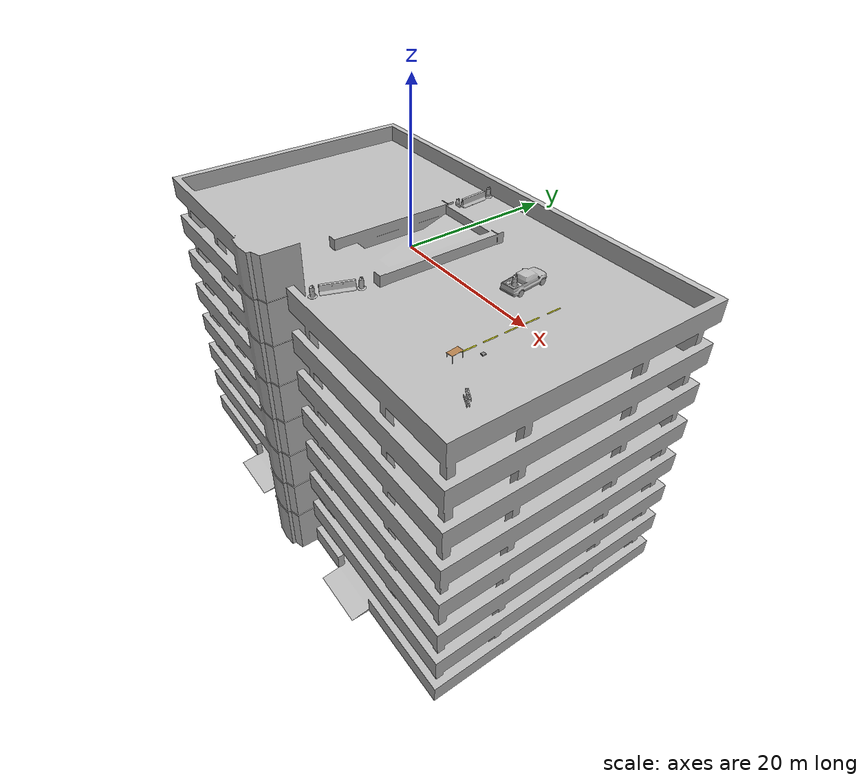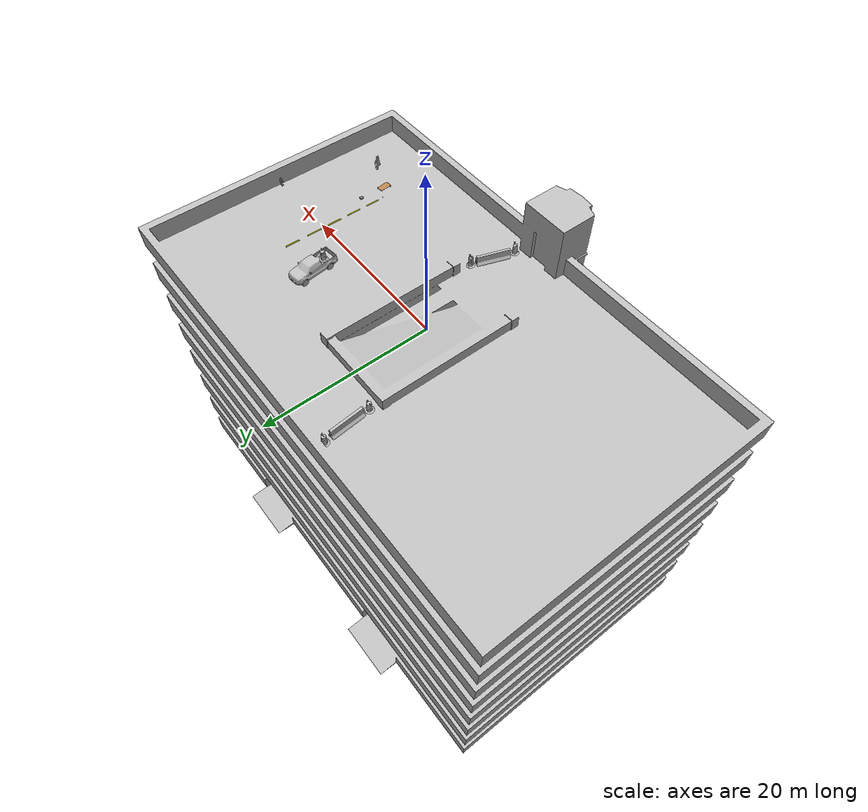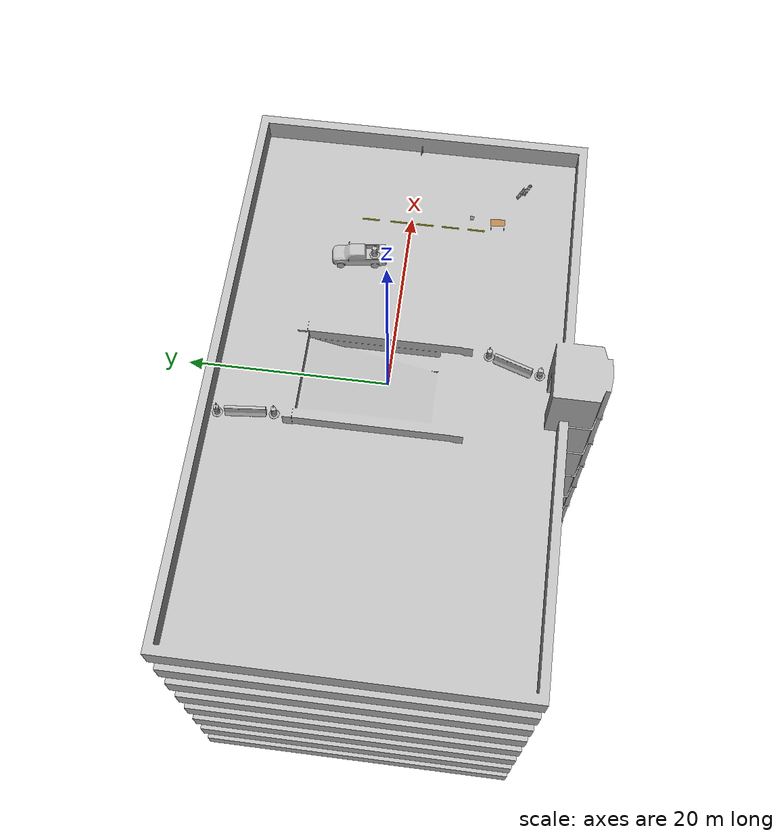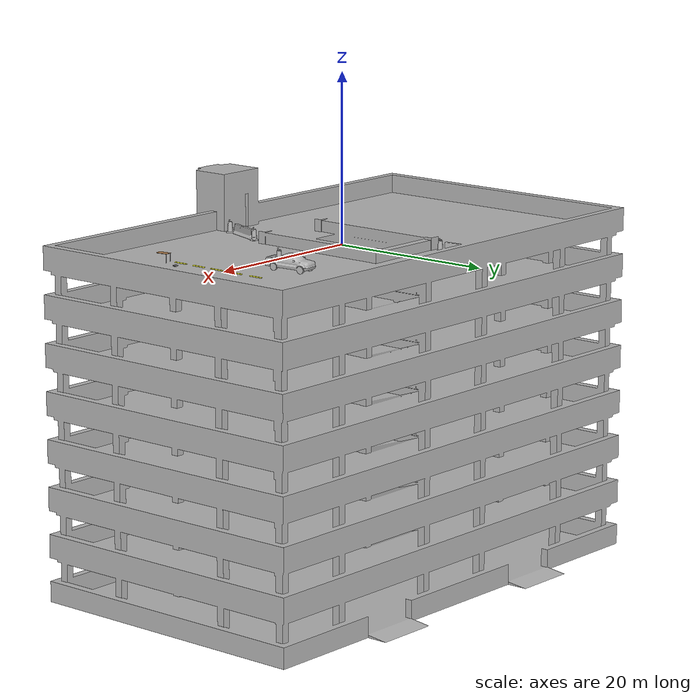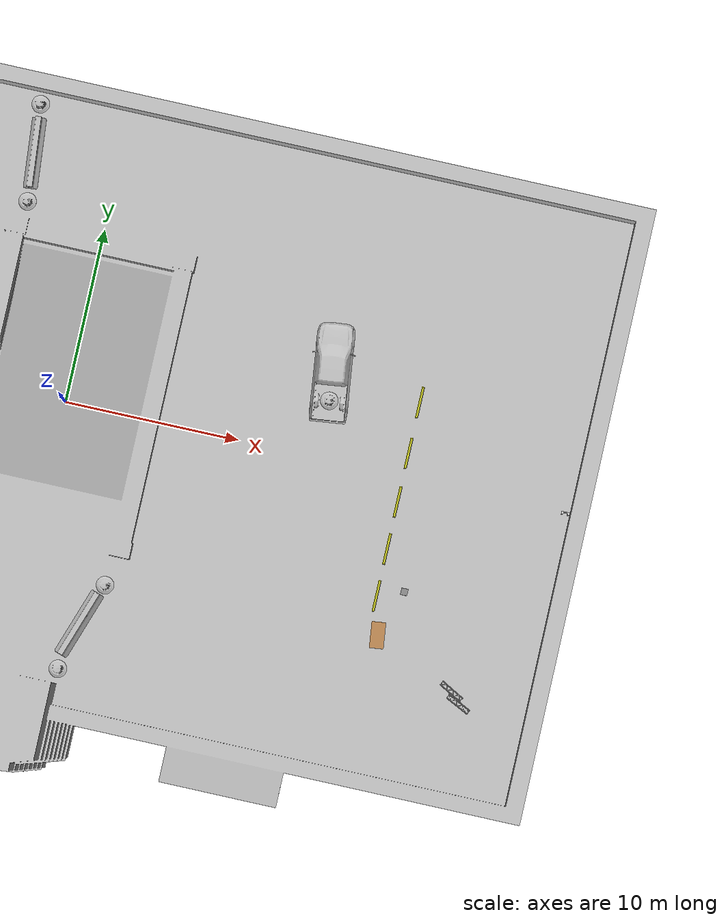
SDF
<sdf version="1.6">
 <world name="default">
  <light name="sun" type="directional">
   <pose>0 0 10 0 -0 0</pose>
   <diffuse>0.8 0.8 0.8 1</diffuse>
   <specular>0.2 0.2 0.2 1</specular>
   <attenuation>
    <range>1000</range>
    <constant>0.9</constant>
    <linear>0.01</linear>
    <quadratic>0.001</quadratic>
   </attenuation>
   <direction>-0.5 0.1 -0.9</direction>
   <spot><inner_angle>0</inner_angle><outer_angle>0</outer_angle><falloff>0</falloff></spot>
  </light>
  <gravity>0 0 -9.8</gravity>
  <magnetic_field>6e-06 2.3e-05 -4.2e-05</magnetic_field>
  <atmosphere type="adiabatic"/>
  <physics type="ode">
   <max_step_size>0.001</max_step_size>
   <real_time_factor>1</real_time_factor>
   <real_time_update_rate>1000</real_time_update_rate>
  </physics>
  <scene><ambient>0.4 0.4 0.4 1</ambient><background>0.7 0.7 0.7 1</background><shadows>1</shadows></scene>
  <audio><device>default</device></audio>
  <spherical_coordinates>
   <surface_model>EARTH_WGS84</surface_model>
   <latitude_deg>0</latitude_deg>
   <longitude_deg>0</longitude_deg>
   <elevation>0</elevation>
   <heading_deg>0</heading_deg>
  </spherical_coordinates>
  <model name="parking_garage">
   <static>1</static>
   <link name="link">
    <collision name="collision">
     <geometry><mesh><uri>model://parking_garage/meshes/parking_garage.dae</uri></mesh></geometry>
    </collision>
    <visual name="visual">
     <geometry><mesh><uri>model://parking_garage/meshes/parking_garage.dae</uri></mesh></geometry>
    </visual>
   </link>
   <pose>0 0 -39.144 0 -0 0</pose>
  </model>
  <model name="Construction Barrel">
   <link name="link">
    <inertial>
     <pose>0 0 0.4 0 -0 0</pose>
     <mass>500</mass>
     <inertia><ixx>51.2096</ixx><iyy>51.2096</iyy><izz>25</izz><ixy>0</ixy><ixz>0</ixz><iyz>0</iyz></inertia>
    </inertial>
    <collision name="collision">
     <geometry><mesh><uri>model://construction_barrel/meshes/construction_barrel.dae</uri></mesh></geometry>
    </collision>
    <visual name="visual">
     <geometry><mesh><uri>model://construction_barrel/meshes/construction_barrel.dae</uri></mesh></geometry>
    </visual>
   </link>
   <pose>4.43329 -9.63921 -1e-05 2e-06 -0 0.082378</pose>
  </model>
  <model name="jersey_barrier">
   <static>1</static>
   <link name="link">
    <visual name="visual">
     <geometry><mesh><uri>model://jersey_barrier/meshes/jersey_barrier.dae</uri></mesh></geometry>
    </visual>
    <collision name="upright">
     <pose>0 0 0.5715 0 -0 0</pose>
     <geometry><box><size>4.06542 0.3063 1.143</size></box></geometry>
    </collision>
    <collision name="base">
     <pose>0 0 0.032258 0 -0 0</pose>
     <geometry><box><size>4.06542 0.8107 0.064516</size></box></geometry>
    </collision>
    <collision name="base2">
     <pose>0 0 0.1 0 -0 0</pose>
     <geometry><box><size>4.06542 0.65 0.1</size></box></geometry>
    </collision>
    <collision name="base3">
     <pose>0 0 0.2 0 -0 0</pose>
     <geometry><box><size>4.06542 0.5 0.1</size></box></geometry>
    </collision>
    <collision name="left-angle">
     <pose>0 -0.224 0.2401 0.9 -0 0</pose>
     <geometry><box><size>4.06542 0.5 0.064516</size></box></geometry>
    </collision>
    <collision name="right-angle">
     <pose>0 0.224 0.2401 -0.9 0 0</pose>
     <geometry><box><size>4.06542 0.5 0.064516</size></box></geometry>
    </collision>
   </link>
   <pose>3.48852 -12.0957 0 0 0 -1.90259</pose>
  </model>
  <model name="jersey_barrier_clone">
   <static>1</static>
   <link name="link">
    <visual name="visual">
     <geometry><mesh><uri>model://jersey_barrier/meshes/jersey_barrier.dae</uri></mesh></geometry>
    </visual>
    <collision name="upright">
     <pose>0 0 0.5715 0 -0 0</pose>
     <geometry><box><size>4.06542 0.3063 1.143</size></box></geometry>
    </collision>
    <collision name="base">
     <pose>0 0 0.032258 0 -0 0</pose>
     <geometry><box><size>4.06542 0.8107 0.064516</size></box></geometry>
    </collision>
    <collision name="base2">
     <pose>0 0 0.1 0 -0 0</pose>
     <geometry><box><size>4.06542 0.65 0.1</size></box></geometry>
    </collision>
    <collision name="base3">
     <pose>0 0 0.2 0 -0 0</pose>
     <geometry><box><size>4.06542 0.5 0.1</size></box></geometry>
    </collision>
    <collision name="left-angle">
     <pose>0 -0.224 0.2401 0.9 -0 0</pose>
     <geometry><box><size>4.06542 0.5 0.064516</size></box></geometry>
    </collision>
    <collision name="right-angle">
     <pose>0 0.224 0.2401 -0.9 0 0</pose>
     <geometry><box><size>4.06542 0.5 0.064516</size></box></geometry>
    </collision>
   </link>
   <pose>-4.84049 13.4021 0 0 0 -1.48186</pose>
  </model>
  <model name="cinder_block_wide">
   <link name="link">
    <inertial>
     <pose>0 0 0.071438 0 -0 0</pose>
     <mass>5</mass>
     <inertia>
      <ixx>0.0681466</ixx>
      <ixy>0</ixy>
      <iyy>0.0681466</iyy>
      <ixz>0</ixz>
      <iyz>0</iyz>
      <izz>0.124808</izz>
     </inertia>
    </inertial>
    <visual name="visual">
     <geometry><mesh><uri>model://cinder_block_wide/meshes/cinder_block_wide.dae</uri></mesh></geometry>
    </visual>
    <collision name="top">
     <pose>0 0 0.130175 0 -0 0</pose>
     <geometry><box><size>0.387354 0.387354 0.0254</size></box></geometry>
     <surface>
      <contact><ode><max_vel>0.1</max_vel><min_depth>0.001</min_depth></ode></contact>
      <friction><ode><mu>1</mu><mu2>1</mu2></ode></friction>
     </surface>
    </collision>
    <collision name="bottom">
     <pose>0 0 0.0127 0 -0 0</pose>
     <geometry><box><size>0.387354 0.387354 0.0254</size></box></geometry>
     <surface>
      <contact><ode><max_vel>0.1</max_vel><min_depth>0.001</min_depth></ode></contact>
      <friction><ode><mu>1</mu><mu2>1</mu2></ode></friction>
     </surface>
    </collision>
    <collision name="left">
     <pose>0 -0.183355 0.071438 0 -0 0</pose>
     <geometry><box><size>0.387354 0.020643 0.092075</size></box></geometry>
     <surface>
      <contact><ode><max_vel>0.1</max_vel><min_depth>0.001</min_depth></ode></contact>
      <friction><ode><mu>1</mu><mu2>1</mu2></ode></friction>
     </surface>
    </collision>
    <collision name="right">
     <pose>0 0.183355 0.071438 0 -0 0</pose>
     <geometry><box><size>0.387354 0.020643 0.092075</size></box></geometry>
     <surface>
      <contact><ode><max_vel>0.1</max_vel><min_depth>0.001</min_depth></ode></contact>
      <friction><ode><mu>1</mu><mu2>1</mu2></ode></friction>
     </surface>
    </collision>
    <collision name="middle">
     <pose>0 0 0.071438 0 -0 0</pose>
     <geometry><box><size>0.387354 0.0254 0.092075</size></box></geometry>
     <surface>
      <contact><ode><max_vel>0.1</max_vel><min_depth>0.001</min_depth></ode></contact>
      <friction><ode><mu>1</mu><mu2>1</mu2></ode></friction>
     </surface>
    </collision>
   </link>
   <pose>21.058 -6.30922 -0.000736 2e-06 -0.000116 -0</pose>
  </model>
  <model name="truss">
   <link name="link">
    <inertial>
     <mass>20.7307</mass>
     <inertia>
      <ixx>4.7978</ixx>
      <ixy>0</ixy>
      <ixz>0</ixz>
      <iyy>0.4699</iyy>
      <iyz>-0.002</iyz>
      <izz>4.7978</izz>
     </inertia>
    </inertial>
    <collision name="collision">
     <geometry><mesh><uri>model://drc_practice_truss/meshes/truss.dae</uri></mesh></geometry>
     <surface>
      <bounce><restitution_coefficient>0</restitution_coefficient><threshold>100000</threshold></bounce>
      <friction><ode><mu>10</mu><mu2>10</mu2></ode></friction>
     </surface>
    </collision>
    <visual name="visual">
     <geometry><mesh><uri>model://drc_practice_truss/meshes/truss.dae</uri></mesh></geometry>
    </visual>
   </link>
   <pose>24.8939 -11.2313 0.143285 -1.4e-05 -0 1.06959</pose>
  </model>
  <model name="truss_clone">
   <link name="link">
    <inertial>
     <mass>20.7307</mass>
     <inertia>
      <ixx>4.7978</ixx>
      <ixy>0</ixy>
      <ixz>0</ixz>
      <iyy>0.4699</iyy>
      <iyz>-0.002</iyz>
      <izz>4.7978</izz>
     </inertia>
    </inertial>
    <collision name="collision">
     <geometry><mesh><uri>model://drc_practice_truss/meshes/truss.dae</uri></mesh></geometry>
     <surface>
      <bounce><restitution_coefficient>0</restitution_coefficient><threshold>100000</threshold></bounce>
      <friction><ode><mu>10</mu><mu2>10</mu2></ode></friction>
     </surface>
    </collision>
    <visual name="visual">
     <geometry><mesh><uri>model://drc_practice_truss/meshes/truss.dae</uri></mesh></geometry>
    </visual>
   </link>
   <pose>25.4227 -11.8464 0.14726 3.14159 0 -2.02388</pose>
  </model>
  <model name="table">
   <static>1</static>
   <link name="link">
    <collision name="surface">
     <pose>0 0 1 0 -0 0</pose>
     <geometry><box><size>1.5 0.8 0.03</size></box></geometry>
     <surface><friction><ode><mu>0.6</mu><mu2>0.6</mu2></ode></friction></surface>
    </collision>
    <visual name="visual1">
     <pose>0 0 1 0 -0 0</pose>
     <geometry><box><size>1.5 0.8 0.03</size></box></geometry>
     <material>
      <script><uri>file://media/materials/scripts/gazebo.material</uri><name>Gazebo/Wood</name></script>
     </material>
    </visual>
    <collision name="front_left_leg">
     <pose>0.68 0.38 0.5 0 -0 0</pose>
     <geometry><cylinder><radius>0.02</radius><length>1</length></cylinder></geometry>
    </collision>
    <visual name="front_left_leg">
     <pose>0.68 0.38 0.5 0 -0 0</pose>
     <geometry><cylinder><radius>0.02</radius><length>1</length></cylinder></geometry>
     <material>
      <script><uri>file://media/materials/scripts/gazebo.material</uri><name>Gazebo/Grey</name></script>
     </material>
    </visual>
    <collision name="front_right_leg">
     <pose>0.68 -0.38 0.5 0 -0 0</pose>
     <geometry><cylinder><radius>0.02</radius><length>1</length></cylinder></geometry>
    </collision>
    <visual name="front_right_leg">
     <pose>0.68 -0.38 0.5 0 -0 0</pose>
     <geometry><cylinder><radius>0.02</radius><length>1</length></cylinder></geometry>
     <material>
      <script><uri>file://media/materials/scripts/gazebo.material</uri><name>Gazebo/Grey</name></script>
     </material>
    </visual>
    <collision name="back_right_leg">
     <pose>-0.68 -0.38 0.5 0 -0 0</pose>
     <geometry><cylinder><radius>0.02</radius><length>1</length></cylinder></geometry>
    </collision>
    <visual name="back_right_leg">
     <pose>-0.68 -0.38 0.5 0 -0 0</pose>
     <geometry><cylinder><radius>0.02</radius><length>1</length></cylinder></geometry>
     <material>
      <script><uri>file://media/materials/scripts/gazebo.material</uri><name>Gazebo/Grey</name></script>
     </material>
    </visual>
    <collision name="back_left_leg">
     <pose>-0.68 0.38 0.5 0 -0 0</pose>
     <geometry><cylinder><radius>0.02</radius><length>1</length></cylinder></geometry>
    </collision>
    <visual name="back_left_leg">
     <pose>-0.68 0.38 0.5 0 -0 0</pose>
     <geometry><cylinder><radius>0.02</radius><length>1</length></cylinder></geometry>
     <material>
      <script><uri>file://media/materials/scripts/gazebo.material</uri><name>Gazebo/Grey</name></script>
     </material>
    </visual>
   </link>
   <pose>20.1142 -9.04783 0 0 0 -1.4562</pose>
  </model>
  <model name="pickup">
   <static>1</static>
   <link name="link">
    <collision name="collision">
     <pose>0 0 0 0 0 -1.5708</pose>
     <geometry><mesh><uri>model://pickup/meshes/pickup.dae</uri></mesh></geometry>
    </collision>
    <visual name="visual">
     <pose>0 0 0 0 0 -1.5708</pose>
     <geometry><mesh><uri>model://pickup/meshes/pickup.dae</uri></mesh></geometry>
    </visual>
   </link>
   <pose>14.3573 5.01591 0 0 -0 1.68889</pose>
  </model>
  <model name="Construction Barrel_clone_2">
   <link name="link">
    <inertial>
     <pose>0 0 0.4 0 -0 0</pose>
     <mass>500</mass>
     <inertia><ixx>51.2096</ixx><iyy>51.2096</iyy><izz>25</izz><ixy>0</ixy><ixz>0</ixz><iyz>0</iyz></inertia>
    </inertial>
    <collision name="collision">
     <geometry><mesh><uri>model://construction_barrel/meshes/construction_barrel.dae</uri></mesh></geometry>
    </collision>
    <visual name="visual">
     <geometry><mesh><uri>model://construction_barrel/meshes/construction_barrel.dae</uri></mesh></geometry>
    </visual>
   </link>
   <pose>14.5537 3.28968 0.859469 -6e-06 -5e-06 -0.060473</pose>
  </model>
  <model name="euro_pallet">
   <static>1</static>
   <link name="link">
    <inertial>
     <mass>20</mass>
     <inertia><ixx>2.43</ixx><ixy>0</ixy><ixz>0</ixz><iyy>1.1</iyy><iyz>0</iyz><izz>3.47</izz></inertia>
    </inertial>
    <collision name="collision">
     <pose>0 0 0.05 0 -0 0</pose>
     <geometry><mesh><uri>model://euro_pallet/meshes/pallet.dae</uri><scale>0.1 0.1 0.1</scale></mesh></geometry>
    </collision>
    <visual name="visual">
     <pose>0 0 0.05 0 -0 0</pose>
     <geometry><mesh><uri>model://euro_pallet/meshes/pallet.dae</uri><scale>0.1 0.1 0.1</scale></mesh></geometry>
    </visual>
   </link>
   <pose>29.1575 0.0 0.40 -1.57079 -3.1415 0</pose>
  </model>
  <model name="Construction Barrel_clone_3">
   <link name="link">
    <inertial>
     <pose>0 0 0.4 0 -0 0</pose>
     <mass>500</mass>
     <inertia><ixx>51.2096</ixx><iyy>51.2096</iyy><izz>25</izz><ixy>0</ixy><ixz>0</ixz><iyz>0</iyz></inertia>
    </inertial>
    <collision name="collision">
     <geometry><mesh><uri>model://construction_barrel/meshes/construction_barrel.dae</uri></mesh></geometry>
    </collision>
    <visual name="visual">
     <geometry><mesh><uri>model://construction_barrel/meshes/construction_barrel.dae</uri></mesh></geometry>
    </visual>
   </link>
   <pose>2.86558 -14.8378 -1.1e-05 3e-06 -2e-06 0.081678</pose>
  </model>
  <model name="Construction Barrel_clone_4">
   <link name="link">
    <inertial>
     <pose>0 0 0.4 0 -0 0</pose>
     <mass>500</mass>
     <inertia><ixx>51.2096</ixx><iyy>51.2096</iyy><izz>25</izz><ixy>0</ixy><ixz>0</ixz><iyz>0</iyz></inertia>
    </inertial>
    <collision name="collision">
     <geometry><mesh><uri>model://construction_barrel/meshes/construction_barrel.dae</uri></mesh></geometry>
    </collision>
    <visual name="visual">
     <geometry><mesh><uri>model://construction_barrel/meshes/construction_barrel.dae</uri></mesh></geometry>
    </visual>
   </link>
   <pose>-5.13116 16.1989 -0.000114 0.000151 -2.8e-05 0.083158</pose>
  </model>
  <model name="Construction Barrel_clone_4_clone">
   <link name="link">
    <inertial>
     <pose>0 0 0.4 0 -0 0</pose>
     <mass>500</mass>
     <inertia><ixx>51.2096</ixx><iyy>51.2096</iyy><izz>25</izz><ixy>0</ixy><ixz>0</ixz><iyz>0</iyz></inertia>
    </inertial>
    <collision name="collision">
     <geometry><mesh><uri>model://construction_barrel/meshes/construction_barrel.dae</uri></mesh></geometry>
    </collision>
    <visual name="visual">
     <geometry><mesh><uri>model://construction_barrel/meshes/construction_barrel.dae</uri></mesh></geometry>
    </visual>
   </link>
   <pose>-4.64591 10.6403 -0.000912 0.000145 -1.3e-05 0.082033</pose>
  </model>
  <model name="drc_practice_yellow_parking_block">
   <static>1</static>
   <link name="link">
    <visual name="visual">
     <geometry><mesh><uri>model://drc_practice_yellow_parking_block/meshes/block.dae</uri></mesh></geometry>
    </visual>
    <collision name="collision">
     <geometry><mesh><uri>model://drc_practice_yellow_parking_block/meshes/block.dae</uri></mesh></geometry>
    </collision>
   </link>
   <pose>19.5772 -6.87981 0 0 -0 0</pose>
  </model>
  <model name="drc_practice_yellow_parking_block_clone">
   <static>1</static>
   <link name="link">
    <visual name="visual">
     <geometry><mesh><uri>model://drc_practice_yellow_parking_block/meshes/block.dae</uri></mesh></geometry>
    </visual>
    <collision name="collision">
     <geometry><mesh><uri>model://drc_practice_yellow_parking_block/meshes/block.dae</uri></mesh></geometry>
    </collision>
   </link>
   <pose>19.5799 -4.15236 0 0 -0 0</pose>
  </model>
  <model name="drc_practice_yellow_parking_block_clone_clone">
   <static>1</static>
   <link name="link">
    <visual name="visual">
     <geometry><mesh><uri>model://drc_practice_yellow_parking_block/meshes/block.dae</uri></mesh></geometry>
    </visual>
    <collision name="collision">
     <geometry><mesh><uri>model://drc_practice_yellow_parking_block/meshes/block.dae</uri></mesh></geometry>
    </collision>
   </link>
   <pose>19.5778 -1.41737 0 0 -0 0</pose>
  </model>
  <model name="drc_practice_yellow_parking_block_clone_clone_0">
   <static>1</static>
   <link name="link">
    <visual name="visual">
     <geometry><mesh><uri>model://drc_practice_yellow_parking_block/meshes/block.dae</uri></mesh></geometry>
    </visual>
    <collision name="collision">
     <geometry><mesh><uri>model://drc_practice_yellow_parking_block/meshes/block.dae</uri></mesh></geometry>
    </collision>
   </link>
   <pose>19.5833 1.40809 0 0 -0 0</pose>
  </model>
  <model name="drc_practice_yellow_parking_block_clone_clone_1">
   <static>1</static>
   <link name="link">
    <visual name="visual">
     <geometry><mesh><uri>model://drc_practice_yellow_parking_block/meshes/block.dae</uri></mesh></geometry>
    </visual>
    <collision name="collision">
     <geometry><mesh><uri>model://drc_practice_yellow_parking_block/meshes/block.dae</uri></mesh></geometry>
    </collision>
   </link>
   <pose>19.5857 4.35873 0 0 -0 0</pose>
  </model>
 </world>
</sdf>
